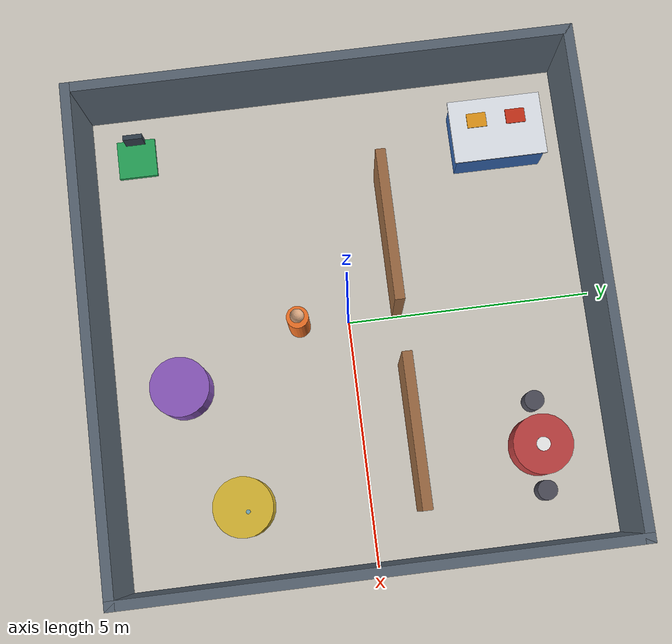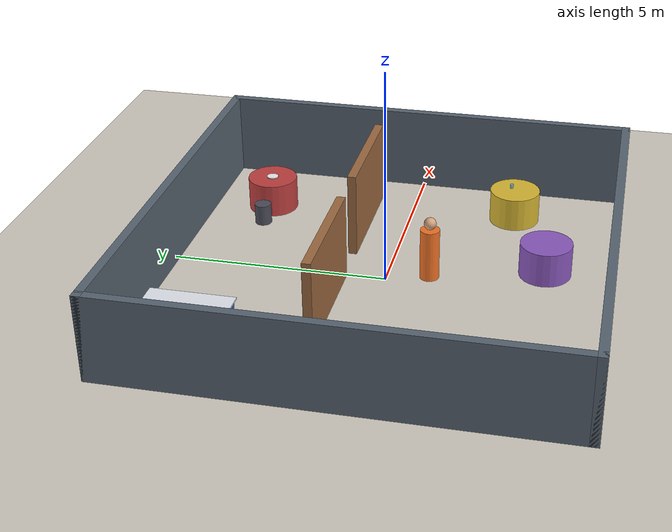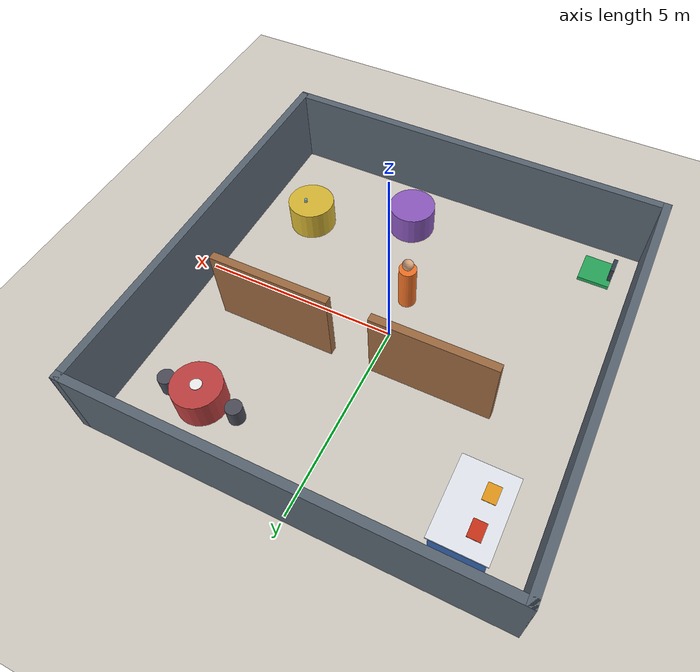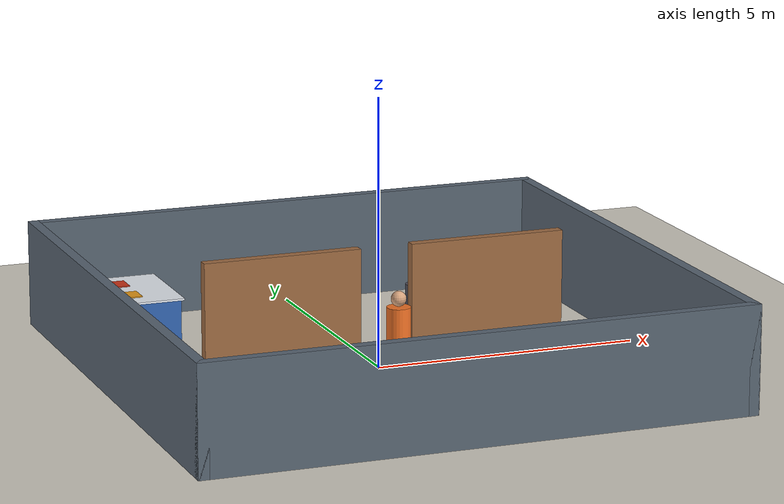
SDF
<?xml version="1.0" ?>
<sdf version="1.8">
  <world name="cstam_world">
    <physics name="1ms" type="ignored">
      <max_step_size>0.001</max_step_size>
      <real_time_factor>1.0</real_time_factor>
    </physics>
    <plugin
      filename="gz-sim-physics-system"
      name="gz::sim::systems::Physics">
    </plugin>
    <plugin
      filename="gz-sim-user-commands-system"
      name="gz::sim::systems::UserCommands">
    </plugin>
    <plugin
      filename="gz-sim-scene-broadcaster-system"
      name="gz::sim::systems::SceneBroadcaster">
    </plugin>
    <plugin
      filename="gz-sim-sensors-system"
      name="gz::sim::systems::Sensors">
      <render_engine>ogre2</render_engine>
    </plugin>

    <!-- Warm Ambient Restaurant Lighting -->
    <light type="directional" name="sun">
      <cast_shadows>true</cast_shadows>
      <pose>0 0 10 0 0 0</pose>
      <diffuse>0.9 0.88 0.82 1</diffuse>
      <specular>0.2 0.2 0.2 1</specular>
      <attenuation>
        <range>1000</range>
        <constant>0.9</constant>
        <linear>0.01</linear>
        <quadratic>0.001</quadratic>
      </attenuation>
      <direction>-0.5 0.1 -0.9</direction>
    </light>

    <!-- Restaurant Floor -->
    <model name="ground_plane">
      <static>true</static>
      <link name="link">
        <collision name="collision">
          <geometry>
            <plane>
              <normal>0 0 1</normal>
              <size>100 100</size>
            </plane>
          </geometry>
        </collision>
        <visual name="visual">
          <geometry>
            <plane>
              <normal>0 0 1</normal>
              <size>100 100</size>
            </plane>
          </geometry>
          <material>
            <ambient>0.82 0.80 0.76 1</ambient>
            <diffuse>0.82 0.80 0.76 1</diffuse>
            <specular>0.3 0.3 0.3 1</specular>
          </material>
        </visual>
      </link>
    </model>

    <!-- Outer Perimeter Walls (10m x 10m area) -->
    <model name="wall_north">
      <static>true</static>
      <pose>0 5 1 0 0 0</pose>
      <link name="link">
        <collision name="collision"><geometry><box><size>10.2 0.2 2.0</size></box></geometry></collision>
        <visual name="visual">
          <geometry><box><size>10.2 0.2 2.0</size></box></geometry>
          <material><ambient>0.35 0.40 0.45 1</ambient><diffuse>0.35 0.40 0.45 1</diffuse></material>
        </visual>
      </link>
    </model>

    <model name="wall_south">
      <static>true</static>
      <pose>0 -5 1 0 0 0</pose>
      <link name="link">
        <collision name="collision"><geometry><box><size>10.2 0.2 2.0</size></box></geometry></collision>
        <visual name="visual">
          <geometry><box><size>10.2 0.2 2.0</size></box></geometry>
          <material><ambient>0.35 0.40 0.45 1</ambient><diffuse>0.35 0.40 0.45 1</diffuse></material>
        </visual>
      </link>
    </model>

    <model name="wall_west">
      <static>true</static>
      <pose>-5 0 1 0 0 0</pose>
      <link name="link">
        <collision name="collision"><geometry><box><size>0.2 10.2 2.0</size></box></geometry></collision>
        <visual name="visual">
          <geometry><box><size>0.2 10.2 2.0</size></box></geometry>
          <material><ambient>0.35 0.40 0.45 1</ambient><diffuse>0.35 0.40 0.45 1</diffuse></material>
        </visual>
      </link>
    </model>

    <model name="wall_east">
      <static>true</static>
      <pose>5 0 1 0 0 0</pose>
      <link name="link">
        <collision name="collision"><geometry><box><size>0.2 10.2 2.0</size></box></geometry></collision>
        <visual name="visual">
          <geometry><box><size>0.2 10.2 2.0</size></box></geometry>
          <material><ambient>0.35 0.40 0.45 1</ambient><diffuse>0.35 0.40 0.45 1</diffuse></material>
        </visual>
      </link>
    </model>

    <!-- Interior Partition Walls creating Central Doorway Passage (Gap between x=0.0 and x=1.0 at y=1.0) -->
    <model name="partition_wall_left">
      <static>true</static>
      <pose>-1.5 1 1 0 0 0</pose>
      <link name="link">
        <collision name="collision"><geometry><box><size>3.0 0.2 2.0</size></box></geometry></collision>
        <visual name="visual">
          <geometry><box><size>3.0 0.2 2.0</size></box></geometry>
          <material><ambient>0.62 0.42 0.26 1</ambient><diffuse>0.62 0.42 0.26 1</diffuse></material>
        </visual>
      </link>
    </model>

    <model name="partition_wall_right">
      <static>true</static>
      <pose>2.5 1 1 0 0 0</pose>
      <link name="link">
        <collision name="collision"><geometry><box><size>3.0 0.2 2.0</size></box></geometry></collision>
        <visual name="visual">
          <geometry><box><size>3.0 0.2 2.0</size></box></geometry>
          <material><ambient>0.62 0.42 0.26 1</ambient><diffuse>0.62 0.42 0.26 1</diffuse></material>
        </visual>
      </link>
    </model>

    <!-- Docking Station (x=-4.0, y=-4.0) -->
    <model name="docking_station">
      <static>true</static>
      <pose>-4.0 -4.0 0.1 0 0 0</pose>
      <link name="link">
        <visual name="base_pad">
          <geometry><box><size>0.8 0.8 0.1</size></box></geometry>
          <material><ambient>0.15 0.65 0.35 1</ambient><diffuse>0.15 0.65 0.35 1</diffuse></material>
        </visual>
        <visual name="charge_tower">
          <pose>-0.35 0 0.25 0 0 0</pose>
          <geometry><box><size>0.1 0.4 0.4</size></box></geometry>
          <material><ambient>0.2 0.25 0.3 1</ambient><diffuse>0.2 0.25 0.3 1</diffuse></material>
        </visual>
        <collision name="collision">
          <geometry><box><size>0.8 0.8 0.2</size></box></geometry>
        </collision>
      </link>
    </model>

    <!-- Kitchen / Pickup Station (x=-3.5, y=3.5) -->
    <model name="kitchen_pickup">
      <static>true</static>
      <pose>-3.5 3.5 0.45 0 0 0</pose>
      <link name="link">
        <!-- Main Counter -->
        <visual name="counter">
          <geometry><box><size>1.2 1.8 0.9</size></box></geometry>
          <material><ambient>0.2 0.4 0.7 1</ambient><diffuse>0.2 0.4 0.7 1</diffuse></material>
        </visual>
        <!-- Counter Top Surface -->
        <visual name="counter_top">
          <pose>0 0 0.46 0 0 0</pose>
          <geometry><box><size>1.3 1.9 0.04</size></box></geometry>
          <material><ambient>0.9 0.92 0.95 1</ambient><diffuse>0.9 0.92 0.95 1</diffuse></material>
        </visual>
        <!-- Food Trays on Counter -->
        <visual name="food_tray_1">
          <pose>-0.2 0.4 0.49 0 0 0</pose>
          <geometry><box><size>0.3 0.4 0.02</size></box></geometry>
          <material><ambient>0.8 0.2 0.1 1</ambient><diffuse>0.8 0.2 0.1 1</diffuse></material>
        </visual>
        <visual name="food_tray_2">
          <pose>-0.2 -0.4 0.49 0 0 0</pose>
          <geometry><box><size>0.3 0.4 0.02</size></box></geometry>
          <material><ambient>0.9 0.6 0.1 1</ambient><diffuse>0.9 0.6 0.1 1</diffuse></material>
        </visual>
        <collision name="collision">
          <geometry><box><size>1.3 1.9 0.94</size></box></geometry>
        </collision>
      </link>
    </model>

    <!-- Dining Table 1 (x=3.0, y=3.5) -->
    <model name="table_1">
      <static>true</static>
      <pose>3.0 3.5 0.4 0 0 0</pose>
      <link name="link">
        <visual name="tabletop">
          <geometry><cylinder><radius>0.6</radius><length>0.8</length></cylinder></geometry>
          <material><ambient>0.75 0.25 0.25 1</ambient><diffuse>0.75 0.25 0.25 1</diffuse></material>
        </visual>
        <!-- Plate on Table 1 -->
        <visual name="plate">
          <pose>0 0 0.41 0 0 0</pose>
          <geometry><cylinder><radius>0.14</radius><length>0.02</length></cylinder></geometry>
          <material><ambient>0.95 0.95 0.95 1</ambient><diffuse>0.95 0.95 0.95 1</diffuse></material>
        </visual>
        <collision name="collision">
          <geometry><cylinder><radius>0.6</radius><length>0.8</length></cylinder></geometry>
        </collision>
      </link>
    </model>

    <!-- Chairs for Table 1 -->
    <model name="table_1_chair_a">
      <static>true</static>
      <pose>2.1 3.5 0.25 0 0 0</pose>
      <link name="link">
        <visual name="seat"><geometry><cylinder><radius>0.2</radius><length>0.5</length></cylinder></geometry><material><ambient>0.3 0.3 0.35 1</ambient><diffuse>0.3 0.3 0.35 1</diffuse></material></visual>
        <collision name="collision"><geometry><cylinder><radius>0.2</radius><length>0.5</length></cylinder></geometry></collision>
      </link>
    </model>
    <model name="table_1_chair_b">
      <static>true</static>
      <pose>3.9 3.5 0.25 0 0 0</pose>
      <link name="link">
        <visual name="seat"><geometry><cylinder><radius>0.2</radius><length>0.5</length></cylinder></geometry><material><ambient>0.3 0.3 0.35 1</ambient><diffuse>0.3 0.3 0.35 1</diffuse></material></visual>
        <collision name="collision"><geometry><cylinder><radius>0.2</radius><length>0.5</length></cylinder></geometry></collision>
      </link>
    </model>

    <!-- Dining Table 2 (x=3.5, y=-2.5) -->
    <model name="table_2">
      <static>true</static>
      <pose>3.5 -2.5 0.4 0 0 0</pose>
      <link name="link">
        <visual name="tabletop">
          <geometry><cylinder><radius>0.6</radius><length>0.8</length></cylinder></geometry>
          <material><ambient>0.85 0.72 0.2 1</ambient><diffuse>0.85 0.72 0.2 1</diffuse></material>
        </visual>
        <visual name="water_glass">
          <pose>0.1 0.1 0.45 0 0 0</pose>
          <geometry><cylinder><radius>0.04</radius><length>0.10</length></cylinder></geometry>
          <material><ambient>0.4 0.7 0.9 0.8</ambient><diffuse>0.4 0.7 0.9 0.8</diffuse></material>
        </visual>
        <collision name="collision">
          <geometry><cylinder><radius>0.6</radius><length>0.8</length></cylinder></geometry>
        </collision>
      </link>
    </model>

    <!-- Dining Table 3 (x=1.0, y=-3.5) -->
    <model name="table_3">
      <static>true</static>
      <pose>1.0 -3.5 0.4 0 0 0</pose>
      <link name="link">
        <visual name="tabletop">
          <geometry><cylinder><radius>0.6</radius><length>0.8</length></cylinder></geometry>
          <material><ambient>0.55 0.35 0.75 1</ambient><diffuse>0.55 0.35 0.75 1</diffuse></material>
        </visual>
        <collision name="collision">
          <geometry><cylinder><radius>0.6</radius><length>0.8</length></cylinder></geometry>
        </collision>
      </link>
    </model>

    <!-- Dynamic Obstacle Model (Pedestrian crossing central corridor) -->
    <model name="dynamic_obstacle">
      <pose>0 -1 0.8 0 0 0</pose>
      <link name="link">
        <!-- Body Torso -->
        <visual name="torso">
          <geometry><cylinder><radius>0.22</radius><length>1.2</length></cylinder></geometry>
          <material><ambient>0.95 0.45 0.15 1</ambient><diffuse>0.95 0.45 0.15 1</diffuse></material>
        </visual>
        <!-- Head -->
        <visual name="head">
          <pose>0 0 0.75 0 0 0</pose>
          <geometry><sphere><radius>0.14</radius></sphere></geometry>
          <material><ambient>0.85 0.65 0.5 1</ambient><diffuse>0.85 0.65 0.5 1</diffuse></material>
        </visual>
        <collision name="collision">
          <geometry><cylinder><radius>0.26</radius><length>1.6</length></cylinder></geometry>
        </collision>
      </link>
    </model>

  </world>
</sdf>
